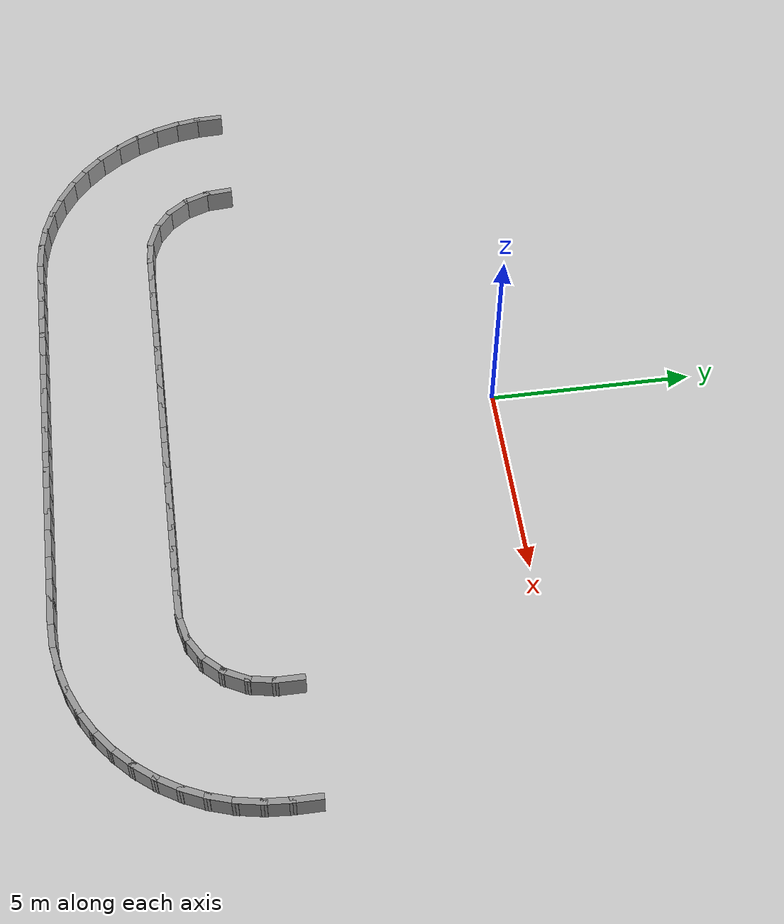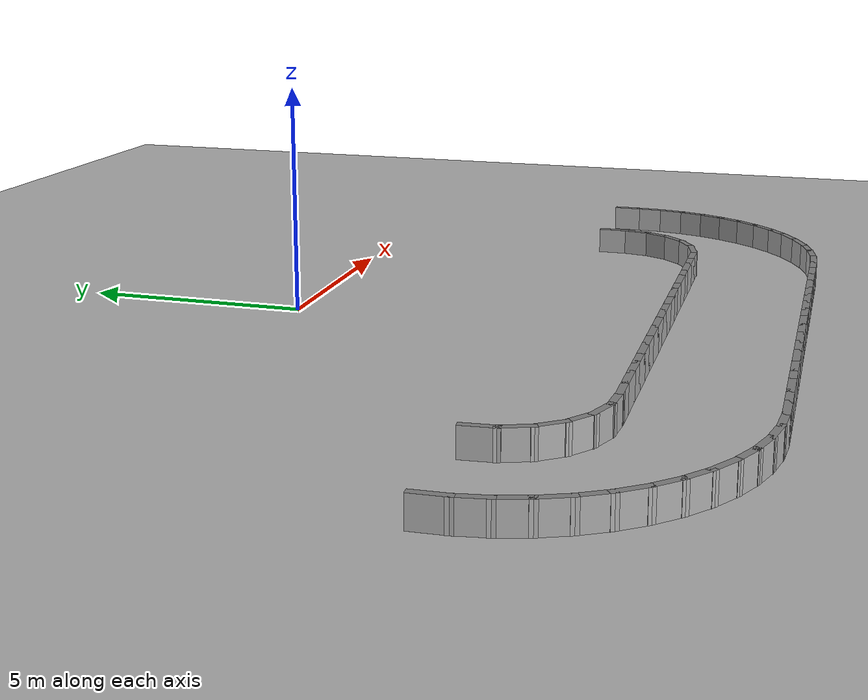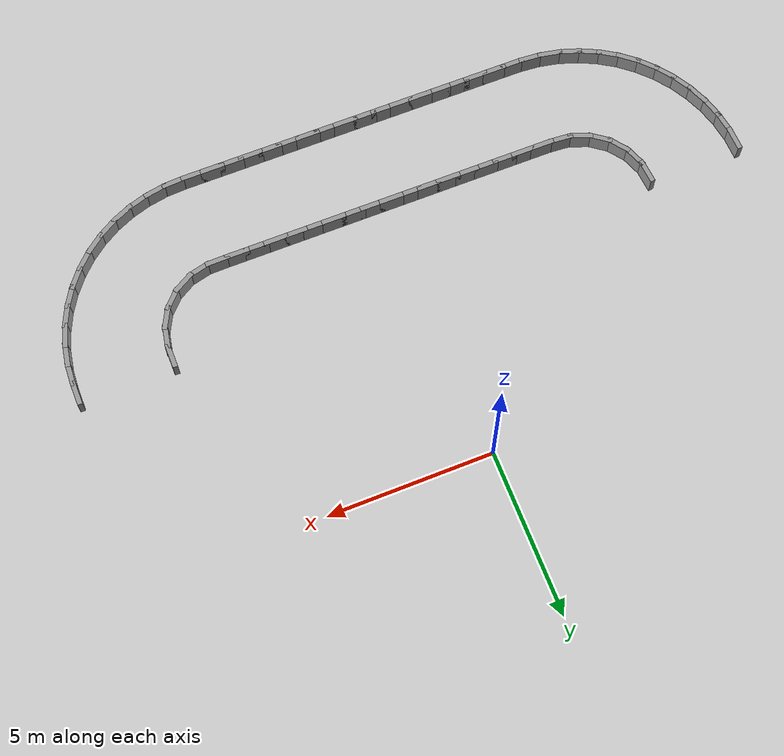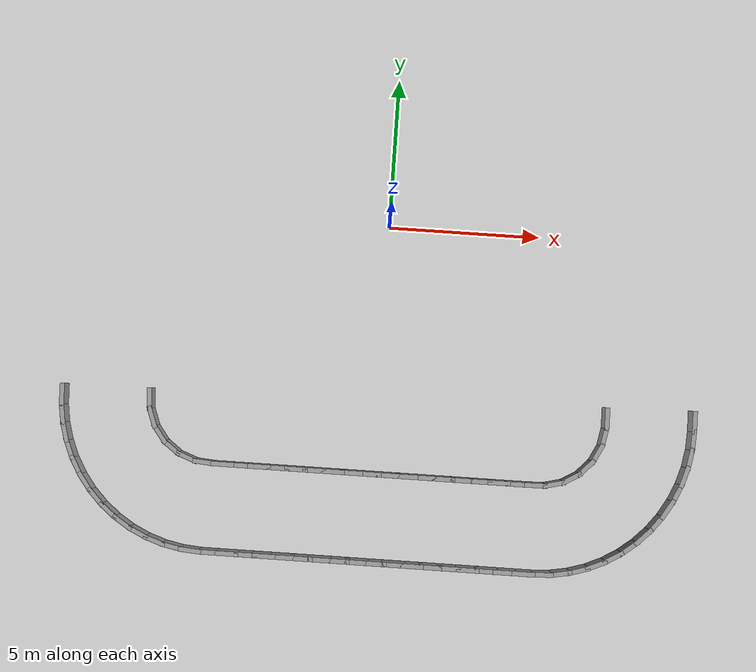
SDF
<sdf version="1.7">
 <world name="default">
  <model name="ground_plane">
   <static>1</static>
   <link name="link">
    <collision name="collision">
     <geometry><plane><normal>0 0 1</normal><size>100 100</size></plane></geometry>
     <surface><friction><ode><mu>100</mu><mu2>50</mu2></ode></friction></surface>
    </collision>
    <visual name="visual">
     <cast_shadows>0</cast_shadows>
     <geometry><plane><normal>0 0 1</normal><size>100 100</size></plane></geometry>
     <material>
      <script><uri>file://media/materials/scripts/gazebo.material</uri><name>Gazebo/Grey</name></script>
     </material>
    </visual>
   </link>
  </model>
  <model name="rand_rrect_00">
   <link name="Wall_49">
    <collision name="Wall_49_Collision">
     <geometry><box><size>0.7484 0.1500 0.6000</size></box></geometry>
     <pose>0 0 0.3000 0 -0 0</pose>
    </collision>
    <visual name="Wall_49_Visual">
     <pose>0 0 0.3000 0 -0 0</pose>
     <geometry><box><size>0.7484 0.1500 0.6000</size></box></geometry>
     <material>
      <script><uri>file://media/materials/scripts/gazebo.material</uri><name>Gazebo/Grey</name></script>
      <ambient>1 1 1 1</ambient>
     </material>
    </visual>
    <pose>-7.4577 -6.2466 0 0 -0 -1.48453</pose>
   </link>
   <link name="Wall_50">
    <collision name="Wall_50_Collision">
     <geometry><box><size>0.7480 0.1500 0.6000</size></box></geometry>
     <pose>0 0 0.3000 0 -0 0</pose>
    </collision>
    <visual name="Wall_50_Visual">
     <pose>0 0 0.3000 0 -0 0</pose>
     <geometry><box><size>0.7480 0.1500 0.6000</size></box></geometry>
     <material>
      <script><uri>file://media/materials/scripts/gazebo.material</uri><name>Gazebo/Grey</name></script>
      <ambient>1 1 1 1</ambient>
     </material>
    </visual>
    <pose>-7.3254 -6.8240 0 0 -0 -1.20647</pose>
   </link>
   <link name="Wall_51">
    <collision name="Wall_51_Collision">
     <geometry><box><size>0.7480 0.1500 0.6000</size></box></geometry>
     <pose>0 0 0.3000 0 -0 0</pose>
    </collision>
    <visual name="Wall_51_Visual">
     <pose>0 0 0.3000 0 -0 0</pose>
     <geometry><box><size>0.7480 0.1500 0.6000</size></box></geometry>
     <material>
      <script><uri>file://media/materials/scripts/gazebo.material</uri><name>Gazebo/Grey</name></script>
      <ambient>1 1 1 1</ambient>
     </material>
    </visual>
    <pose>-7.0381 -7.3415 0 0 -0 -0.92140</pose>
   </link>
   <link name="Wall_52">
    <collision name="Wall_52_Collision">
     <geometry><box><size>0.7480 0.1500 0.6000</size></box></geometry>
     <pose>0 0 0.3000 0 -0 0</pose>
    </collision>
    <visual name="Wall_52_Visual">
     <pose>0 0 0.3000 0 -0 0</pose>
     <geometry><box><size>0.7480 0.1500 0.6000</size></box></geometry>
     <material>
      <script><uri>file://media/materials/scripts/gazebo.material</uri><name>Gazebo/Grey</name></script>
      <ambient>1 1 1 1</ambient>
     </material>
    </visual>
    <pose>-6.6168 -7.7573 0 0 -0 -0.63632</pose>
   </link>
   <link name="Wall_53">
    <collision name="Wall_53_Collision">
     <geometry><box><size>0.7480 0.1500 0.6000</size></box></geometry>
     <pose>0 0 0.3000 0 -0 0</pose>
    </collision>
    <visual name="Wall_53_Visual">
     <pose>0 0 0.3000 0 -0 0</pose>
     <geometry><box><size>0.7480 0.1500 0.6000</size></box></geometry>
     <material>
      <script><uri>file://media/materials/scripts/gazebo.material</uri><name>Gazebo/Grey</name></script>
      <ambient>1 1 1 1</ambient>
     </material>
    </visual>
    <pose>-6.0956 -8.0379 0 0 -0 -0.35125</pose>
   </link>
   <link name="Wall_54">
    <collision name="Wall_54_Collision">
     <geometry><box><size>0.7486 0.1500 0.6000</size></box></geometry>
     <pose>0 0 0.3000 0 -0 0</pose>
    </collision>
    <visual name="Wall_54_Visual">
     <pose>0 0 0.3000 0 -0 0</pose>
     <geometry><box><size>0.7486 0.1500 0.6000</size></box></geometry>
     <material>
      <script><uri>file://media/materials/scripts/gazebo.material</uri><name>Gazebo/Grey</name></script>
      <ambient>1 1 1 1</ambient>
     </material>
    </visual>
    <pose>-5.5165 -8.1636 0 0 -0 -0.07639</pose>
   </link>
   <link name="Wall_55">
    <collision name="Wall_55_Collision">
     <geometry><box><size>0.7500 0.1500 0.6000</size></box></geometry>
     <pose>0 0 0.3000 0 -0 0</pose>
    </collision>
    <visual name="Wall_55_Visual">
     <pose>0 0 0.3000 0 -0 0</pose>
     <geometry><box><size>0.7500 0.1500 0.6000</size></box></geometry>
     <material>
      <script><uri>file://media/materials/scripts/gazebo.material</uri><name>Gazebo/Grey</name></script>
      <ambient>1 1 1 1</ambient>
     </material>
    </visual>
    <pose>-4.9181 -8.1864 0 0 -0 0.00000</pose>
   </link>
   <link name="Wall_56">
    <collision name="Wall_56_Collision">
     <geometry><box><size>0.7500 0.1500 0.6000</size></box></geometry>
     <pose>0 0 0.3000 0 -0 0</pose>
    </collision>
    <visual name="Wall_56_Visual">
     <pose>0 0 0.3000 0 -0 0</pose>
     <geometry><box><size>0.7500 0.1500 0.6000</size></box></geometry>
     <material>
      <script><uri>file://media/materials/scripts/gazebo.material</uri><name>Gazebo/Grey</name></script>
      <ambient>1 1 1 1</ambient>
     </material>
    </visual>
    <pose>-4.3181 -8.1864 0 0 -0 0.00000</pose>
   </link>
   <link name="Wall_57">
    <collision name="Wall_57_Collision">
     <geometry><box><size>0.7500 0.1500 0.6000</size></box></geometry>
     <pose>0 0 0.3000 0 -0 0</pose>
    </collision>
    <visual name="Wall_57_Visual">
     <pose>0 0 0.3000 0 -0 0</pose>
     <geometry><box><size>0.7500 0.1500 0.6000</size></box></geometry>
     <material>
      <script><uri>file://media/materials/scripts/gazebo.material</uri><name>Gazebo/Grey</name></script>
      <ambient>1 1 1 1</ambient>
     </material>
    </visual>
    <pose>-3.7181 -8.1864 0 0 -0 0.00000</pose>
   </link>
   <link name="Wall_58">
    <collision name="Wall_58_Collision">
     <geometry><box><size>0.7500 0.1500 0.6000</size></box></geometry>
     <pose>0 0 0.3000 0 -0 0</pose>
    </collision>
    <visual name="Wall_58_Visual">
     <pose>0 0 0.3000 0 -0 0</pose>
     <geometry><box><size>0.7500 0.1500 0.6000</size></box></geometry>
     <material>
      <script><uri>file://media/materials/scripts/gazebo.material</uri><name>Gazebo/Grey</name></script>
      <ambient>1 1 1 1</ambient>
     </material>
    </visual>
    <pose>-3.1181 -8.1864 0 0 -0 0.00000</pose>
   </link>
   <link name="Wall_59">
    <collision name="Wall_59_Collision">
     <geometry><box><size>0.7500 0.1500 0.6000</size></box></geometry>
     <pose>0 0 0.3000 0 -0 0</pose>
    </collision>
    <visual name="Wall_59_Visual">
     <pose>0 0 0.3000 0 -0 0</pose>
     <geometry><box><size>0.7500 0.1500 0.6000</size></box></geometry>
     <material>
      <script><uri>file://media/materials/scripts/gazebo.material</uri><name>Gazebo/Grey</name></script>
      <ambient>1 1 1 1</ambient>
     </material>
    </visual>
    <pose>-2.5181 -8.1864 0 0 -0 0.00000</pose>
   </link>
   <link name="Wall_60">
    <collision name="Wall_60_Collision">
     <geometry><box><size>0.7500 0.1500 0.6000</size></box></geometry>
     <pose>0 0 0.3000 0 -0 0</pose>
    </collision>
    <visual name="Wall_60_Visual">
     <pose>0 0 0.3000 0 -0 0</pose>
     <geometry><box><size>0.7500 0.1500 0.6000</size></box></geometry>
     <material>
      <script><uri>file://media/materials/scripts/gazebo.material</uri><name>Gazebo/Grey</name></script>
      <ambient>1 1 1 1</ambient>
     </material>
    </visual>
    <pose>-1.9181 -8.1864 0 0 -0 0.00000</pose>
   </link>
   <link name="Wall_61">
    <collision name="Wall_61_Collision">
     <geometry><box><size>0.7500 0.1500 0.6000</size></box></geometry>
     <pose>0 0 0.3000 0 -0 0</pose>
    </collision>
    <visual name="Wall_61_Visual">
     <pose>0 0 0.3000 0 -0 0</pose>
     <geometry><box><size>0.7500 0.1500 0.6000</size></box></geometry>
     <material>
      <script><uri>file://media/materials/scripts/gazebo.material</uri><name>Gazebo/Grey</name></script>
      <ambient>1 1 1 1</ambient>
     </material>
    </visual>
    <pose>-1.3181 -8.1864 0 0 -0 0.00000</pose>
   </link>
   <link name="Wall_62">
    <collision name="Wall_62_Collision">
     <geometry><box><size>0.7500 0.1500 0.6000</size></box></geometry>
     <pose>0 0 0.3000 0 -0 0</pose>
    </collision>
    <visual name="Wall_62_Visual">
     <pose>0 0 0.3000 0 -0 0</pose>
     <geometry><box><size>0.7500 0.1500 0.6000</size></box></geometry>
     <material>
      <script><uri>file://media/materials/scripts/gazebo.material</uri><name>Gazebo/Grey</name></script>
      <ambient>1 1 1 1</ambient>
     </material>
    </visual>
    <pose>-0.7181 -8.1864 0 0 -0 0.00000</pose>
   </link>
   <link name="Wall_63">
    <collision name="Wall_63_Collision">
     <geometry><box><size>0.7500 0.1500 0.6000</size></box></geometry>
     <pose>0 0 0.3000 0 -0 0</pose>
    </collision>
    <visual name="Wall_63_Visual">
     <pose>0 0 0.3000 0 -0 0</pose>
     <geometry><box><size>0.7500 0.1500 0.6000</size></box></geometry>
     <material>
      <script><uri>file://media/materials/scripts/gazebo.material</uri><name>Gazebo/Grey</name></script>
      <ambient>1 1 1 1</ambient>
     </material>
    </visual>
    <pose>-0.1181 -8.1864 0 0 -0 0.00000</pose>
   </link>
   <link name="Wall_64">
    <collision name="Wall_64_Collision">
     <geometry><box><size>0.7500 0.1500 0.6000</size></box></geometry>
     <pose>0 0 0.3000 0 -0 0</pose>
    </collision>
    <visual name="Wall_64_Visual">
     <pose>0 0 0.3000 0 -0 0</pose>
     <geometry><box><size>0.7500 0.1500 0.6000</size></box></geometry>
     <material>
      <script><uri>file://media/materials/scripts/gazebo.material</uri><name>Gazebo/Grey</name></script>
      <ambient>1 1 1 1</ambient>
     </material>
    </visual>
    <pose>0.4819 -8.1864 0 0 -0 0.00000</pose>
   </link>
   <link name="Wall_65">
    <collision name="Wall_65_Collision">
     <geometry><box><size>0.7500 0.1500 0.6000</size></box></geometry>
     <pose>0 0 0.3000 0 -0 0</pose>
    </collision>
    <visual name="Wall_65_Visual">
     <pose>0 0 0.3000 0 -0 0</pose>
     <geometry><box><size>0.7500 0.1500 0.6000</size></box></geometry>
     <material>
      <script><uri>file://media/materials/scripts/gazebo.material</uri><name>Gazebo/Grey</name></script>
      <ambient>1 1 1 1</ambient>
     </material>
    </visual>
    <pose>1.0819 -8.1864 0 0 -0 0.00000</pose>
   </link>
   <link name="Wall_66">
    <collision name="Wall_66_Collision">
     <geometry><box><size>0.7500 0.1500 0.6000</size></box></geometry>
     <pose>0 0 0.3000 0 -0 0</pose>
    </collision>
    <visual name="Wall_66_Visual">
     <pose>0 0 0.3000 0 -0 0</pose>
     <geometry><box><size>0.7500 0.1500 0.6000</size></box></geometry>
     <material>
      <script><uri>file://media/materials/scripts/gazebo.material</uri><name>Gazebo/Grey</name></script>
      <ambient>1 1 1 1</ambient>
     </material>
    </visual>
    <pose>1.6819 -8.1864 0 0 -0 0.00000</pose>
   </link>
   <link name="Wall_67">
    <collision name="Wall_67_Collision">
     <geometry><box><size>0.7500 0.1500 0.6000</size></box></geometry>
     <pose>0 0 0.3000 0 -0 0</pose>
    </collision>
    <visual name="Wall_67_Visual">
     <pose>0 0 0.3000 0 -0 0</pose>
     <geometry><box><size>0.7500 0.1500 0.6000</size></box></geometry>
     <material>
      <script><uri>file://media/materials/scripts/gazebo.material</uri><name>Gazebo/Grey</name></script>
      <ambient>1 1 1 1</ambient>
     </material>
    </visual>
    <pose>2.2819 -8.1864 0 0 -0 0.00000</pose>
   </link>
   <link name="Wall_68">
    <collision name="Wall_68_Collision">
     <geometry><box><size>0.7500 0.1500 0.6000</size></box></geometry>
     <pose>0 0 0.3000 0 -0 0</pose>
    </collision>
    <visual name="Wall_68_Visual">
     <pose>0 0 0.3000 0 -0 0</pose>
     <geometry><box><size>0.7500 0.1500 0.6000</size></box></geometry>
     <material>
      <script><uri>file://media/materials/scripts/gazebo.material</uri><name>Gazebo/Grey</name></script>
      <ambient>1 1 1 1</ambient>
     </material>
    </visual>
    <pose>2.8819 -8.1864 0 0 -0 0.00000</pose>
   </link>
   <link name="Wall_69">
    <collision name="Wall_69_Collision">
     <geometry><box><size>0.7500 0.1500 0.6000</size></box></geometry>
     <pose>0 0 0.3000 0 -0 0</pose>
    </collision>
    <visual name="Wall_69_Visual">
     <pose>0 0 0.3000 0 -0 0</pose>
     <geometry><box><size>0.7500 0.1500 0.6000</size></box></geometry>
     <material>
      <script><uri>file://media/materials/scripts/gazebo.material</uri><name>Gazebo/Grey</name></script>
      <ambient>1 1 1 1</ambient>
     </material>
    </visual>
    <pose>3.4819 -8.1864 0 0 -0 0.00000</pose>
   </link>
   <link name="Wall_70">
    <collision name="Wall_70_Collision">
     <geometry><box><size>0.7500 0.1500 0.6000</size></box></geometry>
     <pose>0 0 0.3000 0 -0 0</pose>
    </collision>
    <visual name="Wall_70_Visual">
     <pose>0 0 0.3000 0 -0 0</pose>
     <geometry><box><size>0.7500 0.1500 0.6000</size></box></geometry>
     <material>
      <script><uri>file://media/materials/scripts/gazebo.material</uri><name>Gazebo/Grey</name></script>
      <ambient>1 1 1 1</ambient>
     </material>
    </visual>
    <pose>4.0819 -8.1864 0 0 -0 0.00000</pose>
   </link>
   <link name="Wall_71">
    <collision name="Wall_71_Collision">
     <geometry><box><size>0.7500 0.1500 0.6000</size></box></geometry>
     <pose>0 0 0.3000 0 -0 0</pose>
    </collision>
    <visual name="Wall_71_Visual">
     <pose>0 0 0.3000 0 -0 0</pose>
     <geometry><box><size>0.7500 0.1500 0.6000</size></box></geometry>
     <material>
      <script><uri>file://media/materials/scripts/gazebo.material</uri><name>Gazebo/Grey</name></script>
      <ambient>1 1 1 1</ambient>
     </material>
    </visual>
    <pose>4.6819 -8.1864 0 0 -0 0.00000</pose>
   </link>
   <link name="Wall_72">
    <collision name="Wall_72_Collision">
     <geometry><box><size>0.7498 0.1500 0.6000</size></box></geometry>
     <pose>0 0 0.3000 0 -0 0</pose>
    </collision>
    <visual name="Wall_72_Visual">
     <pose>0 0 0.3000 0 -0 0</pose>
     <geometry><box><size>0.7498 0.1500 0.6000</size></box></geometry>
     <material>
      <script><uri>file://media/materials/scripts/gazebo.material</uri><name>Gazebo/Grey</name></script>
      <ambient>1 1 1 1</ambient>
     </material>
    </visual>
    <pose>5.2818 -8.1815 0 0 -0 0.01634</pose>
   </link>
   <link name="Wall_73">
    <collision name="Wall_73_Collision">
     <geometry><box><size>0.7480 0.1500 0.6000</size></box></geometry>
     <pose>0 0 0.3000 0 -0 0</pose>
    </collision>
    <visual name="Wall_73_Visual">
     <pose>0 0 0.3000 0 -0 0</pose>
     <geometry><box><size>0.7480 0.1500 0.6000</size></box></geometry>
     <material>
      <script><uri>file://media/materials/scripts/gazebo.material</uri><name>Gazebo/Grey</name></script>
      <ambient>1 1 1 1</ambient>
     </material>
    </visual>
    <pose>5.8721 -8.1058 0 0 -0 0.23904</pose>
   </link>
   <link name="Wall_74">
    <collision name="Wall_74_Collision">
     <geometry><box><size>0.7480 0.1500 0.6000</size></box></geometry>
     <pose>0 0 0.3000 0 -0 0</pose>
    </collision>
    <visual name="Wall_74_Visual">
     <pose>0 0 0.3000 0 -0 0</pose>
     <geometry><box><size>0.7480 0.1500 0.6000</size></box></geometry>
     <material>
      <script><uri>file://media/materials/scripts/gazebo.material</uri><name>Gazebo/Grey</name></script>
      <ambient>1 1 1 1</ambient>
     </material>
    </visual>
    <pose>6.4214 -7.8854 0 0 -0 0.52411</pose>
   </link>
   <link name="Wall_75">
    <collision name="Wall_75_Collision">
     <geometry><box><size>0.7480 0.1500 0.6000</size></box></geometry>
     <pose>0 0 0.3000 0 -0 0</pose>
    </collision>
    <visual name="Wall_75_Visual">
     <pose>0 0 0.3000 0 -0 0</pose>
     <geometry><box><size>0.7480 0.1500 0.6000</size></box></geometry>
     <material>
      <script><uri>file://media/materials/scripts/gazebo.material</uri><name>Gazebo/Grey</name></script>
      <ambient>1 1 1 1</ambient>
     </material>
    </visual>
    <pose>6.8866 -7.5194 0 0 -0 0.80919</pose>
   </link>
   <link name="Wall_76">
    <collision name="Wall_76_Collision">
     <geometry><box><size>0.7480 0.1500 0.6000</size></box></geometry>
     <pose>0 0 0.3000 0 -0 0</pose>
    </collision>
    <visual name="Wall_76_Visual">
     <pose>0 0 0.3000 0 -0 0</pose>
     <geometry><box><size>0.7480 0.1500 0.6000</size></box></geometry>
     <material>
      <script><uri>file://media/materials/scripts/gazebo.material</uri><name>Gazebo/Grey</name></script>
      <ambient>1 1 1 1</ambient>
     </material>
    </visual>
    <pose>7.2301 -7.0374 0 0 -0 1.09425</pose>
   </link>
   <link name="Wall_77">
    <collision name="Wall_77_Collision">
     <geometry><box><size>0.7480 0.1500 0.6000</size></box></geometry>
     <pose>0 0 0.3000 0 -0 0</pose>
    </collision>
    <visual name="Wall_77_Visual">
     <pose>0 0 0.3000 0 -0 0</pose>
     <geometry><box><size>0.7480 0.1500 0.6000</size></box></geometry>
     <material>
      <script><uri>file://media/materials/scripts/gazebo.material</uri><name>Gazebo/Grey</name></script>
      <ambient>1 1 1 1</ambient>
     </material>
    </visual>
    <pose>7.4241 -6.4782 0 0 -0 1.37933</pose>
   </link>
   <link name="Wall_78">
    <collision name="Wall_78_Collision">
     <geometry><box><size>0.7500 0.1500 0.6000</size></box></geometry>
     <pose>0 0 0.3000 0 -0 0</pose>
    </collision>
    <visual name="Wall_78_Visual">
     <pose>0 0 0.3000 0 -0 0</pose>
     <geometry><box><size>0.7500 0.1500 0.6000</size></box></geometry>
     <material>
      <script><uri>file://media/materials/scripts/gazebo.material</uri><name>Gazebo/Grey</name></script>
      <ambient>1 1 1 1</ambient>
     </material>
    </visual>
    <pose>7.4823 -5.8847 0 0 -0 1.56659</pose>
   </link>
   <link name="Wall_162">
    <collision name="Wall_162_Collision">
     <geometry><box><size>0.7497 0.1500 0.6000</size></box></geometry>
     <pose>0 0 0.3000 0 -0 0</pose>
    </collision>
    <visual name="Wall_162_Visual">
     <pose>0 0 0.3000 0 -0 0</pose>
     <geometry><box><size>0.7497 0.1500 0.6000</size></box></geometry>
     <material>
      <script><uri>file://media/materials/scripts/gazebo.material</uri><name>Gazebo/Grey</name></script>
      <ambient>1 1 1 1</ambient>
     </material>
    </visual>
    <pose>-10.3231 -6.2868 0 0 -0 -1.52782</pose>
   </link>
   <link name="Wall_163">
    <collision name="Wall_163_Collision">
     <geometry><box><size>0.7496 0.1500 0.6000</size></box></geometry>
     <pose>0 0 0.3000 0 -0 0</pose>
    </collision>
    <visual name="Wall_163_Visual">
     <pose>0 0 0.3000 0 -0 0</pose>
     <geometry><box><size>0.7496 0.1500 0.6000</size></box></geometry>
     <material>
      <script><uri>file://media/materials/scripts/gazebo.material</uri><name>Gazebo/Grey</name></script>
      <ambient>1 1 1 1</ambient>
     </material>
    </visual>
    <pose>-10.2617 -6.8822 0 0 -0 -1.40830</pose>
   </link>
   <link name="Wall_164">
    <collision name="Wall_164_Collision">
     <geometry><box><size>0.7496 0.1500 0.6000</size></box></geometry>
     <pose>0 0 0.3000 0 -0 0</pose>
    </collision>
    <visual name="Wall_164_Visual">
     <pose>0 0 0.3000 0 -0 0</pose>
     <geometry><box><size>0.7496 0.1500 0.6000</size></box></geometry>
     <material>
      <script><uri>file://media/materials/scripts/gazebo.material</uri><name>Gazebo/Grey</name></script>
      <ambient>1 1 1 1</ambient>
     </material>
    </visual>
    <pose>-10.1293 -7.4659 0 0 -0 -1.28726</pose>
   </link>
   <link name="Wall_165">
    <collision name="Wall_165_Collision">
     <geometry><box><size>0.7496 0.1500 0.6000</size></box></geometry>
     <pose>0 0 0.3000 0 -0 0</pose>
    </collision>
    <visual name="Wall_165_Visual">
     <pose>0 0 0.3000 0 -0 0</pose>
     <geometry><box><size>0.7496 0.1500 0.6000</size></box></geometry>
     <material>
      <script><uri>file://media/materials/scripts/gazebo.material</uri><name>Gazebo/Grey</name></script>
      <ambient>1 1 1 1</ambient>
     </material>
    </visual>
    <pose>-9.9275 -8.0294 0 0 -0 -1.16623</pose>
   </link>
   <link name="Wall_166">
    <collision name="Wall_166_Collision">
     <geometry><box><size>0.7496 0.1500 0.6000</size></box></geometry>
     <pose>0 0 0.3000 0 -0 0</pose>
    </collision>
    <visual name="Wall_166_Visual">
     <pose>0 0 0.3000 0 -0 0</pose>
     <geometry><box><size>0.7496 0.1500 0.6000</size></box></geometry>
     <material>
      <script><uri>file://media/materials/scripts/gazebo.material</uri><name>Gazebo/Grey</name></script>
      <ambient>1 1 1 1</ambient>
     </material>
    </visual>
    <pose>-9.6590 -8.5643 0 0 -0 -1.04520</pose>
   </link>
   <link name="Wall_167">
    <collision name="Wall_167_Collision">
     <geometry><box><size>0.7496 0.1500 0.6000</size></box></geometry>
     <pose>0 0 0.3000 0 -0 0</pose>
    </collision>
    <visual name="Wall_167_Visual">
     <pose>0 0 0.3000 0 -0 0</pose>
     <geometry><box><size>0.7496 0.1500 0.6000</size></box></geometry>
     <material>
      <script><uri>file://media/materials/scripts/gazebo.material</uri><name>Gazebo/Grey</name></script>
      <ambient>1 1 1 1</ambient>
     </material>
    </visual>
    <pose>-9.3280 -9.0630 0 0 -0 -0.92416</pose>
   </link>
   <link name="Wall_168">
    <collision name="Wall_168_Collision">
     <geometry><box><size>0.7496 0.1500 0.6000</size></box></geometry>
     <pose>0 0 0.3000 0 -0 0</pose>
    </collision>
    <visual name="Wall_168_Visual">
     <pose>0 0 0.3000 0 -0 0</pose>
     <geometry><box><size>0.7496 0.1500 0.6000</size></box></geometry>
     <material>
      <script><uri>file://media/materials/scripts/gazebo.material</uri><name>Gazebo/Grey</name></script>
      <ambient>1 1 1 1</ambient>
     </material>
    </visual>
    <pose>-8.9391 -9.5180 0 0 -0 -0.80313</pose>
   </link>
   <link name="Wall_169">
    <collision name="Wall_169_Collision">
     <geometry><box><size>0.7496 0.1500 0.6000</size></box></geometry>
     <pose>0 0 0.3000 0 -0 0</pose>
    </collision>
    <visual name="Wall_169_Visual">
     <pose>0 0 0.3000 0 -0 0</pose>
     <geometry><box><size>0.7496 0.1500 0.6000</size></box></geometry>
     <material>
      <script><uri>file://media/materials/scripts/gazebo.material</uri><name>Gazebo/Grey</name></script>
      <ambient>1 1 1 1</ambient>
     </material>
    </visual>
    <pose>-8.4982 -9.9227 0 0 -0 -0.68208</pose>
   </link>
   <link name="Wall_170">
    <collision name="Wall_170_Collision">
     <geometry><box><size>0.7496 0.1500 0.6000</size></box></geometry>
     <pose>0 0 0.3000 0 -0 0</pose>
    </collision>
    <visual name="Wall_170_Visual">
     <pose>0 0 0.3000 0 -0 0</pose>
     <geometry><box><size>0.7496 0.1500 0.6000</size></box></geometry>
     <material>
      <script><uri>file://media/materials/scripts/gazebo.material</uri><name>Gazebo/Grey</name></script>
      <ambient>1 1 1 1</ambient>
     </material>
    </visual>
    <pose>-8.0116 -10.2713 0 0 -0 -0.56104</pose>
   </link>
   <link name="Wall_171">
    <collision name="Wall_171_Collision">
     <geometry><box><size>0.7496 0.1500 0.6000</size></box></geometry>
     <pose>0 0 0.3000 0 -0 0</pose>
    </collision>
    <visual name="Wall_171_Visual">
     <pose>0 0 0.3000 0 -0 0</pose>
     <geometry><box><size>0.7496 0.1500 0.6000</size></box></geometry>
     <material>
      <script><uri>file://media/materials/scripts/gazebo.material</uri><name>Gazebo/Grey</name></script>
      <ambient>1 1 1 1</ambient>
     </material>
    </visual>
    <pose>-7.4864 -10.5585 0 0 -0 -0.44001</pose>
   </link>
   <link name="Wall_172">
    <collision name="Wall_172_Collision">
     <geometry><box><size>0.7496 0.1500 0.6000</size></box></geometry>
     <pose>0 0 0.3000 0 -0 0</pose>
    </collision>
    <visual name="Wall_172_Visual">
     <pose>0 0 0.3000 0 -0 0</pose>
     <geometry><box><size>0.7496 0.1500 0.6000</size></box></geometry>
     <material>
      <script><uri>file://media/materials/scripts/gazebo.material</uri><name>Gazebo/Grey</name></script>
      <ambient>1 1 1 1</ambient>
     </material>
    </visual>
    <pose>-6.9305 -10.7802 0 0 -0 -0.31897</pose>
   </link>
   <link name="Wall_173">
    <collision name="Wall_173_Collision">
     <geometry><box><size>0.7496 0.1500 0.6000</size></box></geometry>
     <pose>0 0 0.3000 0 -0 0</pose>
    </collision>
    <visual name="Wall_173_Visual">
     <pose>0 0 0.3000 0 -0 0</pose>
     <geometry><box><size>0.7496 0.1500 0.6000</size></box></geometry>
     <material>
      <script><uri>file://media/materials/scripts/gazebo.material</uri><name>Gazebo/Grey</name></script>
      <ambient>1 1 1 1</ambient>
     </material>
    </visual>
    <pose>-6.3518 -10.9332 0 0 -0 -0.19794</pose>
   </link>
   <link name="Wall_174">
    <collision name="Wall_174_Collision">
     <geometry><box><size>0.7496 0.1500 0.6000</size></box></geometry>
     <pose>0 0 0.3000 0 -0 0</pose>
    </collision>
    <visual name="Wall_174_Visual">
     <pose>0 0 0.3000 0 -0 0</pose>
     <geometry><box><size>0.7496 0.1500 0.6000</size></box></geometry>
     <material>
      <script><uri>file://media/materials/scripts/gazebo.material</uri><name>Gazebo/Grey</name></script>
      <ambient>1 1 1 1</ambient>
     </material>
    </visual>
    <pose>-5.7589 -11.0152 0 0 -0 -0.07690</pose>
   </link>
   <link name="Wall_175">
    <collision name="Wall_175_Collision">
     <geometry><box><size>0.7500 0.1500 0.6000</size></box></geometry>
     <pose>0 0 0.3000 0 -0 0</pose>
    </collision>
    <visual name="Wall_175_Visual">
     <pose>0 0 0.3000 0 -0 0</pose>
     <geometry><box><size>0.7500 0.1500 0.6000</size></box></geometry>
     <material>
      <script><uri>file://media/materials/scripts/gazebo.material</uri><name>Gazebo/Grey</name></script>
      <ambient>1 1 1 1</ambient>
     </material>
    </visual>
    <pose>-5.1600 -11.0386 0 0 -0 -0.00113</pose>
   </link>
   <link name="Wall_176">
    <collision name="Wall_176_Collision">
     <geometry><box><size>0.7500 0.1500 0.6000</size></box></geometry>
     <pose>0 0 0.3000 0 -0 0</pose>
    </collision>
    <visual name="Wall_176_Visual">
     <pose>0 0 0.3000 0 -0 0</pose>
     <geometry><box><size>0.7500 0.1500 0.6000</size></box></geometry>
     <material>
      <script><uri>file://media/materials/scripts/gazebo.material</uri><name>Gazebo/Grey</name></script>
      <ambient>1 1 1 1</ambient>
     </material>
    </visual>
    <pose>-4.5600 -11.0389 0 0 -0 0.00000</pose>
   </link>
   <link name="Wall_177">
    <collision name="Wall_177_Collision">
     <geometry><box><size>0.7500 0.1500 0.6000</size></box></geometry>
     <pose>0 0 0.3000 0 -0 0</pose>
    </collision>
    <visual name="Wall_177_Visual">
     <pose>0 0 0.3000 0 -0 0</pose>
     <geometry><box><size>0.7500 0.1500 0.6000</size></box></geometry>
     <material>
      <script><uri>file://media/materials/scripts/gazebo.material</uri><name>Gazebo/Grey</name></script>
      <ambient>1 1 1 1</ambient>
     </material>
    </visual>
    <pose>-3.9600 -11.0389 0 0 -0 0.00000</pose>
   </link>
   <link name="Wall_178">
    <collision name="Wall_178_Collision">
     <geometry><box><size>0.7500 0.1500 0.6000</size></box></geometry>
     <pose>0 0 0.3000 0 -0 0</pose>
    </collision>
    <visual name="Wall_178_Visual">
     <pose>0 0 0.3000 0 -0 0</pose>
     <geometry><box><size>0.7500 0.1500 0.6000</size></box></geometry>
     <material>
      <script><uri>file://media/materials/scripts/gazebo.material</uri><name>Gazebo/Grey</name></script>
      <ambient>1 1 1 1</ambient>
     </material>
    </visual>
    <pose>-3.3600 -11.0389 0 0 -0 0.00000</pose>
   </link>
   <link name="Wall_179">
    <collision name="Wall_179_Collision">
     <geometry><box><size>0.7500 0.1500 0.6000</size></box></geometry>
     <pose>0 0 0.3000 0 -0 0</pose>
    </collision>
    <visual name="Wall_179_Visual">
     <pose>0 0 0.3000 0 -0 0</pose>
     <geometry><box><size>0.7500 0.1500 0.6000</size></box></geometry>
     <material>
      <script><uri>file://media/materials/scripts/gazebo.material</uri><name>Gazebo/Grey</name></script>
      <ambient>1 1 1 1</ambient>
     </material>
    </visual>
    <pose>-2.7600 -11.0389 0 0 -0 0.00000</pose>
   </link>
   <link name="Wall_180">
    <collision name="Wall_180_Collision">
     <geometry><box><size>0.7500 0.1500 0.6000</size></box></geometry>
     <pose>0 0 0.3000 0 -0 0</pose>
    </collision>
    <visual name="Wall_180_Visual">
     <pose>0 0 0.3000 0 -0 0</pose>
     <geometry><box><size>0.7500 0.1500 0.6000</size></box></geometry>
     <material>
      <script><uri>file://media/materials/scripts/gazebo.material</uri><name>Gazebo/Grey</name></script>
      <ambient>1 1 1 1</ambient>
     </material>
    </visual>
    <pose>-2.1600 -11.0389 0 0 -0 0.00000</pose>
   </link>
   <link name="Wall_181">
    <collision name="Wall_181_Collision">
     <geometry><box><size>0.7500 0.1500 0.6000</size></box></geometry>
     <pose>0 0 0.3000 0 -0 0</pose>
    </collision>
    <visual name="Wall_181_Visual">
     <pose>0 0 0.3000 0 -0 0</pose>
     <geometry><box><size>0.7500 0.1500 0.6000</size></box></geometry>
     <material>
      <script><uri>file://media/materials/scripts/gazebo.material</uri><name>Gazebo/Grey</name></script>
      <ambient>1 1 1 1</ambient>
     </material>
    </visual>
    <pose>-1.5600 -11.0389 0 0 -0 0.00000</pose>
   </link>
   <link name="Wall_182">
    <collision name="Wall_182_Collision">
     <geometry><box><size>0.7500 0.1500 0.6000</size></box></geometry>
     <pose>0 0 0.3000 0 -0 0</pose>
    </collision>
    <visual name="Wall_182_Visual">
     <pose>0 0 0.3000 0 -0 0</pose>
     <geometry><box><size>0.7500 0.1500 0.6000</size></box></geometry>
     <material>
      <script><uri>file://media/materials/scripts/gazebo.material</uri><name>Gazebo/Grey</name></script>
      <ambient>1 1 1 1</ambient>
     </material>
    </visual>
    <pose>-0.9600 -11.0389 0 0 -0 0.00000</pose>
   </link>
   <link name="Wall_183">
    <collision name="Wall_183_Collision">
     <geometry><box><size>0.7500 0.1500 0.6000</size></box></geometry>
     <pose>0 0 0.3000 0 -0 0</pose>
    </collision>
    <visual name="Wall_183_Visual">
     <pose>0 0 0.3000 0 -0 0</pose>
     <geometry><box><size>0.7500 0.1500 0.6000</size></box></geometry>
     <material>
      <script><uri>file://media/materials/scripts/gazebo.material</uri><name>Gazebo/Grey</name></script>
      <ambient>1 1 1 1</ambient>
     </material>
    </visual>
    <pose>-0.3600 -11.0389 0 0 -0 0.00000</pose>
   </link>
   <link name="Wall_184">
    <collision name="Wall_184_Collision">
     <geometry><box><size>0.7500 0.1500 0.6000</size></box></geometry>
     <pose>0 0 0.3000 0 -0 0</pose>
    </collision>
    <visual name="Wall_184_Visual">
     <pose>0 0 0.3000 0 -0 0</pose>
     <geometry><box><size>0.7500 0.1500 0.6000</size></box></geometry>
     <material>
      <script><uri>file://media/materials/scripts/gazebo.material</uri><name>Gazebo/Grey</name></script>
      <ambient>1 1 1 1</ambient>
     </material>
    </visual>
    <pose>0.2400 -11.0389 0 0 -0 0.00000</pose>
   </link>
   <link name="Wall_185">
    <collision name="Wall_185_Collision">
     <geometry><box><size>0.7500 0.1500 0.6000</size></box></geometry>
     <pose>0 0 0.3000 0 -0 0</pose>
    </collision>
    <visual name="Wall_185_Visual">
     <pose>0 0 0.3000 0 -0 0</pose>
     <geometry><box><size>0.7500 0.1500 0.6000</size></box></geometry>
     <material>
      <script><uri>file://media/materials/scripts/gazebo.material</uri><name>Gazebo/Grey</name></script>
      <ambient>1 1 1 1</ambient>
     </material>
    </visual>
    <pose>0.8400 -11.0389 0 0 -0 0.00000</pose>
   </link>
   <link name="Wall_186">
    <collision name="Wall_186_Collision">
     <geometry><box><size>0.7500 0.1500 0.6000</size></box></geometry>
     <pose>0 0 0.3000 0 -0 0</pose>
    </collision>
    <visual name="Wall_186_Visual">
     <pose>0 0 0.3000 0 -0 0</pose>
     <geometry><box><size>0.7500 0.1500 0.6000</size></box></geometry>
     <material>
      <script><uri>file://media/materials/scripts/gazebo.material</uri><name>Gazebo/Grey</name></script>
      <ambient>1 1 1 1</ambient>
     </material>
    </visual>
    <pose>1.4400 -11.0389 0 0 -0 0.00000</pose>
   </link>
   <link name="Wall_187">
    <collision name="Wall_187_Collision">
     <geometry><box><size>0.7500 0.1500 0.6000</size></box></geometry>
     <pose>0 0 0.3000 0 -0 0</pose>
    </collision>
    <visual name="Wall_187_Visual">
     <pose>0 0 0.3000 0 -0 0</pose>
     <geometry><box><size>0.7500 0.1500 0.6000</size></box></geometry>
     <material>
      <script><uri>file://media/materials/scripts/gazebo.material</uri><name>Gazebo/Grey</name></script>
      <ambient>1 1 1 1</ambient>
     </material>
    </visual>
    <pose>2.0400 -11.0389 0 0 -0 0.00000</pose>
   </link>
   <link name="Wall_188">
    <collision name="Wall_188_Collision">
     <geometry><box><size>0.7500 0.1500 0.6000</size></box></geometry>
     <pose>0 0 0.3000 0 -0 0</pose>
    </collision>
    <visual name="Wall_188_Visual">
     <pose>0 0 0.3000 0 -0 0</pose>
     <geometry><box><size>0.7500 0.1500 0.6000</size></box></geometry>
     <material>
      <script><uri>file://media/materials/scripts/gazebo.material</uri><name>Gazebo/Grey</name></script>
      <ambient>1 1 1 1</ambient>
     </material>
    </visual>
    <pose>2.6400 -11.0389 0 0 -0 0.00000</pose>
   </link>
   <link name="Wall_189">
    <collision name="Wall_189_Collision">
     <geometry><box><size>0.7500 0.1500 0.6000</size></box></geometry>
     <pose>0 0 0.3000 0 -0 0</pose>
    </collision>
    <visual name="Wall_189_Visual">
     <pose>0 0 0.3000 0 -0 0</pose>
     <geometry><box><size>0.7500 0.1500 0.6000</size></box></geometry>
     <material>
      <script><uri>file://media/materials/scripts/gazebo.material</uri><name>Gazebo/Grey</name></script>
      <ambient>1 1 1 1</ambient>
     </material>
    </visual>
    <pose>3.2400 -11.0389 0 0 -0 0.00000</pose>
   </link>
   <link name="Wall_190">
    <collision name="Wall_190_Collision">
     <geometry><box><size>0.7500 0.1500 0.6000</size></box></geometry>
     <pose>0 0 0.3000 0 -0 0</pose>
    </collision>
    <visual name="Wall_190_Visual">
     <pose>0 0 0.3000 0 -0 0</pose>
     <geometry><box><size>0.7500 0.1500 0.6000</size></box></geometry>
     <material>
      <script><uri>file://media/materials/scripts/gazebo.material</uri><name>Gazebo/Grey</name></script>
      <ambient>1 1 1 1</ambient>
     </material>
    </visual>
    <pose>3.8400 -11.0389 0 0 -0 0.00000</pose>
   </link>
   <link name="Wall_191">
    <collision name="Wall_191_Collision">
     <geometry><box><size>0.7500 0.1500 0.6000</size></box></geometry>
     <pose>0 0 0.3000 0 -0 0</pose>
    </collision>
    <visual name="Wall_191_Visual">
     <pose>0 0 0.3000 0 -0 0</pose>
     <geometry><box><size>0.7500 0.1500 0.6000</size></box></geometry>
     <material>
      <script><uri>file://media/materials/scripts/gazebo.material</uri><name>Gazebo/Grey</name></script>
      <ambient>1 1 1 1</ambient>
     </material>
    </visual>
    <pose>4.4400 -11.0389 0 0 -0 0.00000</pose>
   </link>
   <link name="Wall_192">
    <collision name="Wall_192_Collision">
     <geometry><box><size>0.7500 0.1500 0.6000</size></box></geometry>
     <pose>0 0 0.3000 0 -0 0</pose>
    </collision>
    <visual name="Wall_192_Visual">
     <pose>0 0 0.3000 0 -0 0</pose>
     <geometry><box><size>0.7500 0.1500 0.6000</size></box></geometry>
     <material>
      <script><uri>file://media/materials/scripts/gazebo.material</uri><name>Gazebo/Grey</name></script>
      <ambient>1 1 1 1</ambient>
     </material>
    </visual>
    <pose>5.0400 -11.0389 0 0 -0 0.00000</pose>
   </link>
   <link name="Wall_193">
    <collision name="Wall_193_Collision">
     <geometry><box><size>0.7496 0.1500 0.6000</size></box></geometry>
     <pose>0 0 0.3000 0 -0 0</pose>
    </collision>
    <visual name="Wall_193_Visual">
     <pose>0 0 0.3000 0 -0 0</pose>
     <geometry><box><size>0.7496 0.1500 0.6000</size></box></geometry>
     <material>
      <script><uri>file://media/materials/scripts/gazebo.material</uri><name>Gazebo/Grey</name></script>
      <ambient>1 1 1 1</ambient>
     </material>
    </visual>
    <pose>5.6394 -11.0230 0 0 -0 0.05295</pose>
   </link>
   <link name="Wall_194">
    <collision name="Wall_194_Collision">
     <geometry><box><size>0.7496 0.1500 0.6000</size></box></geometry>
     <pose>0 0 0.3000 0 -0 0</pose>
    </collision>
    <visual name="Wall_194_Visual">
     <pose>0 0 0.3000 0 -0 0</pose>
     <geometry><box><size>0.7496 0.1500 0.6000</size></box></geometry>
     <material>
      <script><uri>file://media/materials/scripts/gazebo.material</uri><name>Gazebo/Grey</name></script>
      <ambient>1 1 1 1</ambient>
     </material>
    </visual>
    <pose>6.2341 -10.9553 0 0 -0 0.17372</pose>
   </link>
   <link name="Wall_195">
    <collision name="Wall_195_Collision">
     <geometry><box><size>0.7496 0.1500 0.6000</size></box></geometry>
     <pose>0 0 0.3000 0 -0 0</pose>
    </collision>
    <visual name="Wall_195_Visual">
     <pose>0 0 0.3000 0 -0 0</pose>
     <geometry><box><size>0.7496 0.1500 0.6000</size></box></geometry>
     <material>
      <script><uri>file://media/materials/scripts/gazebo.material</uri><name>Gazebo/Grey</name></script>
      <ambient>1 1 1 1</ambient>
     </material>
    </visual>
    <pose>6.8163 -10.8164 0 0 -0 0.29476</pose>
   </link>
   <link name="Wall_196">
    <collision name="Wall_196_Collision">
     <geometry><box><size>0.7496 0.1500 0.6000</size></box></geometry>
     <pose>0 0 0.3000 0 -0 0</pose>
    </collision>
    <visual name="Wall_196_Visual">
     <pose>0 0 0.3000 0 -0 0</pose>
     <geometry><box><size>0.7496 0.1500 0.6000</size></box></geometry>
     <material>
      <script><uri>file://media/materials/scripts/gazebo.material</uri><name>Gazebo/Grey</name></script>
      <ambient>1 1 1 1</ambient>
     </material>
    </visual>
    <pose>7.3774 -10.6082 0 0 -0 0.41580</pose>
   </link>
   <link name="Wall_197">
    <collision name="Wall_197_Collision">
     <geometry><box><size>0.7496 0.1500 0.6000</size></box></geometry>
     <pose>0 0 0.3000 0 -0 0</pose>
    </collision>
    <visual name="Wall_197_Visual">
     <pose>0 0 0.3000 0 -0 0</pose>
     <geometry><box><size>0.7496 0.1500 0.6000</size></box></geometry>
     <material>
      <script><uri>file://media/materials/scripts/gazebo.material</uri><name>Gazebo/Grey</name></script>
      <ambient>1 1 1 1</ambient>
     </material>
    </visual>
    <pose>7.9093 -10.3338 0 0 -0 0.53684</pose>
   </link>
   <link name="Wall_198">
    <collision name="Wall_198_Collision">
     <geometry><box><size>0.7496 0.1500 0.6000</size></box></geometry>
     <pose>0 0 0.3000 0 -0 0</pose>
    </collision>
    <visual name="Wall_198_Visual">
     <pose>0 0 0.3000 0 -0 0</pose>
     <geometry><box><size>0.7496 0.1500 0.6000</size></box></geometry>
     <material>
      <script><uri>file://media/materials/scripts/gazebo.material</uri><name>Gazebo/Grey</name></script>
      <ambient>1 1 1 1</ambient>
     </material>
    </visual>
    <pose>8.4042 -9.9971 0 0 -0 0.65787</pose>
   </link>
   <link name="Wall_199">
    <collision name="Wall_199_Collision">
     <geometry><box><size>0.7496 0.1500 0.6000</size></box></geometry>
     <pose>0 0 0.3000 0 -0 0</pose>
    </collision>
    <visual name="Wall_199_Visual">
     <pose>0 0 0.3000 0 -0 0</pose>
     <geometry><box><size>0.7496 0.1500 0.6000</size></box></geometry>
     <material>
      <script><uri>file://media/materials/scripts/gazebo.material</uri><name>Gazebo/Grey</name></script>
      <ambient>1 1 1 1</ambient>
     </material>
    </visual>
    <pose>8.8548 -9.6032 0 0 -0 0.77891</pose>
   </link>
   <link name="Wall_200">
    <collision name="Wall_200_Collision">
     <geometry><box><size>0.7496 0.1500 0.6000</size></box></geometry>
     <pose>0 0 0.3000 0 -0 0</pose>
    </collision>
    <visual name="Wall_200_Visual">
     <pose>0 0 0.3000 0 -0 0</pose>
     <geometry><box><size>0.7496 0.1500 0.6000</size></box></geometry>
     <material>
      <script><uri>file://media/materials/scripts/gazebo.material</uri><name>Gazebo/Grey</name></script>
      <ambient>1 1 1 1</ambient>
     </material>
    </visual>
    <pose>9.2546 -9.1577 0 0 -0 0.89994</pose>
   </link>
   <link name="Wall_201">
    <collision name="Wall_201_Collision">
     <geometry><box><size>0.7496 0.1500 0.6000</size></box></geometry>
     <pose>0 0 0.3000 0 -0 0</pose>
    </collision>
    <visual name="Wall_201_Visual">
     <pose>0 0 0.3000 0 -0 0</pose>
     <geometry><box><size>0.7496 0.1500 0.6000</size></box></geometry>
     <material>
      <script><uri>file://media/materials/scripts/gazebo.material</uri><name>Gazebo/Grey</name></script>
      <ambient>1 1 1 1</ambient>
     </material>
    </visual>
    <pose>9.5977 -8.6673 0 0 -0 1.02097</pose>
   </link>
   <link name="Wall_202">
    <collision name="Wall_202_Collision">
     <geometry><box><size>0.7496 0.1500 0.6000</size></box></geometry>
     <pose>0 0 0.3000 0 -0 0</pose>
    </collision>
    <visual name="Wall_202_Visual">
     <pose>0 0 0.3000 0 -0 0</pose>
     <geometry><box><size>0.7496 0.1500 0.6000</size></box></geometry>
     <material>
      <script><uri>file://media/materials/scripts/gazebo.material</uri><name>Gazebo/Grey</name></script>
      <ambient>1 1 1 1</ambient>
     </material>
    </visual>
    <pose>9.8790 -8.1389 0 0 -0 1.14201</pose>
   </link>
   <link name="Wall_203">
    <collision name="Wall_203_Collision">
     <geometry><box><size>0.7496 0.1500 0.6000</size></box></geometry>
     <pose>0 0 0.3000 0 -0 0</pose>
    </collision>
    <visual name="Wall_203_Visual">
     <pose>0 0 0.3000 0 -0 0</pose>
     <geometry><box><size>0.7496 0.1500 0.6000</size></box></geometry>
     <material>
      <script><uri>file://media/materials/scripts/gazebo.material</uri><name>Gazebo/Grey</name></script>
      <ambient>1 1 1 1</ambient>
     </material>
    </visual>
    <pose>10.0944 -7.5805 0 0 -0 1.26304</pose>
   </link>
   <link name="Wall_204">
    <collision name="Wall_204_Collision">
     <geometry><box><size>0.7496 0.1500 0.6000</size></box></geometry>
     <pose>0 0 0.3000 0 -0 0</pose>
    </collision>
    <visual name="Wall_204_Visual">
     <pose>0 0 0.3000 0 -0 0</pose>
     <geometry><box><size>0.7496 0.1500 0.6000</size></box></geometry>
     <material>
      <script><uri>file://media/materials/scripts/gazebo.material</uri><name>Gazebo/Grey</name></script>
      <ambient>1 1 1 1</ambient>
     </material>
    </visual>
    <pose>10.2409 -7.0002 0 0 -0 1.38408</pose>
   </link>
   <link name="Wall_205">
    <collision name="Wall_205_Collision">
     <geometry><box><size>0.7496 0.1500 0.6000</size></box></geometry>
     <pose>0 0 0.3000 0 -0 0</pose>
    </collision>
    <visual name="Wall_205_Visual">
     <pose>0 0 0.3000 0 -0 0</pose>
     <geometry><box><size>0.7496 0.1500 0.6000</size></box></geometry>
     <material>
      <script><uri>file://media/materials/scripts/gazebo.material</uri><name>Gazebo/Grey</name></script>
      <ambient>1 1 1 1</ambient>
     </material>
    </visual>
    <pose>10.3163 -6.4064 0 0 -0 1.50513</pose>
   </link>
   <link name="Wall_206">
    <collision name="Wall_206_Collision">
     <geometry><box><size>0.7500 0.1500 0.6000</size></box></geometry>
     <pose>0 0 0.3000 0 -0 0</pose>
    </collision>
    <visual name="Wall_206_Visual">
     <pose>0 0 0.3000 0 -0 0</pose>
     <geometry><box><size>0.7500 0.1500 0.6000</size></box></geometry>
     <material>
      <script><uri>file://media/materials/scripts/gazebo.material</uri><name>Gazebo/Grey</name></script>
      <ambient>1 1 1 1</ambient>
     </material>
    </visual>
    <pose>10.3360 -5.8073 0 0 -0 1.57068</pose>
   </link>
   <static>1</static>
  </model>
 </world>
</sdf>
